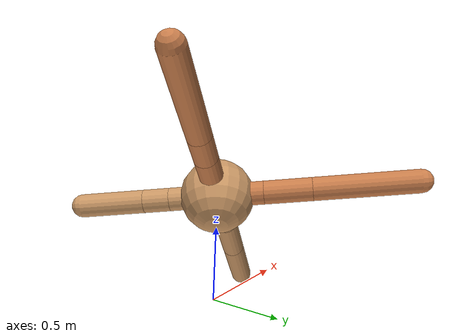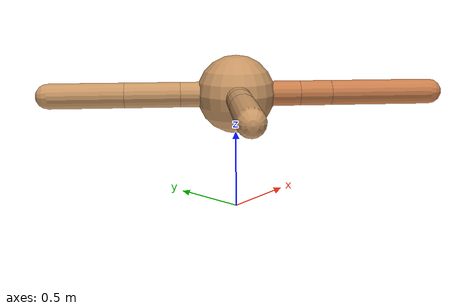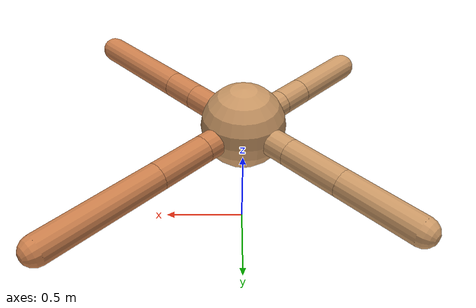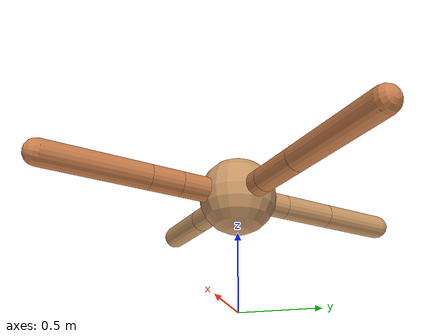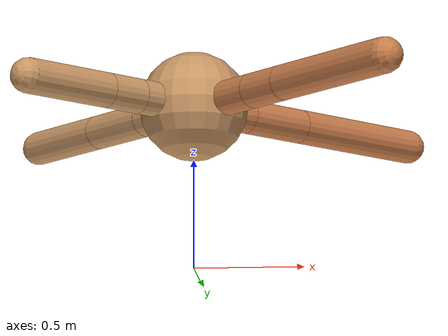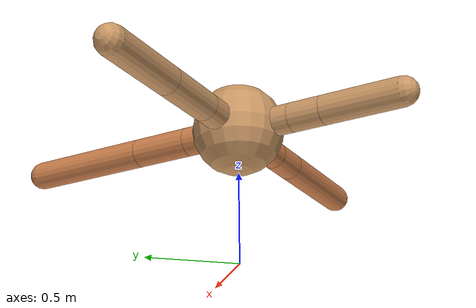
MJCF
<mujoco model="ant">
  <compiler angle="degree" coordinate="local" inertiafromgeom="true" />
  <option integrator="RK4" timestep="0.01" />
  <custom>
    <numeric data="0.0 0.0 0.55 1.0 0.0 0.0 0.0 0.0 1.0 0.0 -1.0 0.0 -1.0 0.0 1.0" name="init_qpos" />
  </custom>
  <default>
    <joint armature="1" damping="1" limited="true" />
    <geom conaffinity="0" condim="3" density="5.0" friction="1.5 0.1 0.1" margin="0.01" rgba="0.8 0.6 0.4 1" />
  </default>
  <worldbody>
    <body name="torso" pos="0 0 0.75">
      <geom name="torso_geom" pos="0 0 0" size="0.25" type="sphere" />

      <body name="front_left_leg" pos="0 0 0">
        <geom fromto="0.0 0.0 0.0 0.22426841131083655 0.22426841131083655 0.0" name="aux_1_geom" size="0.08" type="capsule" rgba=".8 .5 .3 1" />
        <body name="aux_1" pos="0.22426841131083655 0.22426841131083655 0.0">
          <joint axis="0 0 1" name="hip_1" pos="0.0 0.0 0.0" range="-40 40" type="hinge" />
          <geom fromto="0.0 0.0 0.0 0.22819153636105743 0.22819153636105743 0.0" name="left_leg_geom" size="0.08" type="capsule" rgba=".8 .5 .3 1" />
          <body pos="0.22819153636105743 0.22819153636105743 0.0" name="front_left_foot">
            <joint axis="-1 1 0" name="ankle_1" pos="0.0 0.0 0.0" range="30 100" type="hinge" />
            <geom fromto="0.0 0.0 0.0 0.4966480865019115 0.4966480865019115 0.0" name="left_ankle_geom" size="0.08" type="capsule" rgba=".8 .5 .3 1" />
          </body>
        </body>
      </body>
      <body name="front_right_leg" pos="0 0 0">
        <geom fromto="0.0 0.0 0.0 -0.25058328985098033 0.25058328985098033 0.0" name="aux_2_geom" size="0.08" type="capsule" />
        <body name="aux_2" pos="-0.25058328985098033 0.25058328985098033 0.0">
          <joint axis="0 0 1" name="hip_2" pos="0.0 0.0 0.0" range="-40 40" type="hinge" />
          <geom fromto="0.0 0.0 0.0 -0.2479850414805565 0.2479850414805565 0.0" name="right_leg_geom" size="0.08" type="capsule" />
          <body pos="-0.2479850414805565 0.2479850414805565 0.0" name="front_right_foot">
            <joint axis="1 1 0" name="ankle_2" pos="0.0 0.0 0.0" range="-100 -30" type="hinge" />
            <geom fromto="0.0 0.0 0.0 -0.3324011590321567 0.3324011590321567 0.0" name="right_ankle_geom" size="0.08" type="capsule" />
          </body>
        </body>
      </body>
      <body name="left_back_leg" pos="0 0 0">
        <geom fromto="0.0 0.0 0.0 -0.2284982575506283 -0.2284982575506283 0.0" name="aux_3_geom" size="0.08" type="capsule" />
        <body name="aux_3" pos="-0.2284982575506283 -0.2284982575506283 0.0">
          <joint axis="0 0 1" name="hip_3" pos="0.0 0.0 0.0" range="-40 40" type="hinge" />
          <geom fromto="0.0 0.0 0.0 -0.1275753659839128 -0.1275753659839128 0.0" name="back_leg_geom" size="0.08" type="capsule" />
          <body pos="-0.1275753659839128 -0.1275753659839128 0.0" name="left_back_foot">
            <joint axis="-1 1 0" name="ankle_3" pos="0.0 0.0 0.0" range="-100 -30" type="hinge" />
            <geom fromto="0.0 0.0 0.0 -0.309409277877752 -0.309409277877752 0.0" name="third_ankle_geom" size="0.08" type="capsule" />
          </body>
        </body>
      </body>
      <body name="right_back_leg" pos="0 0 0">
        <geom fromto="0.0 0.0 0.0 0.29030622775771286 -0.29030622775771286 0.0" name="aux_4_geom" size="0.08" type="capsule" rgba=".8 .5 .3 1" />
        <body name="aux_4" pos="0.29030622775771286 -0.29030622775771286 0.0">
          <joint axis="0 0 1" name="hip_4" pos="0.0 0.0 0.0" range="-40 40" type="hinge" />
          <geom fromto="0.0 0.0 0.0 0.14412792726407694 -0.14412792726407694 0.0" name="rightback_leg_geom" size="0.08" type="capsule" rgba=".8 .5 .3 1" />
          <body pos="0.14412792726407694 -0.14412792726407694 0.0" name="right_back_foot">
            <joint axis="1 1 0" name="ankle_4" pos="0.0 0.0 0.0" range="30 100" type="hinge" />
            <geom fromto="0.0 0.0 0.0 0.4642683833583295 -0.4642683833583295 0.0" name="fourth_ankle_geom" size="0.08" type="capsule" rgba=".8 .5 .3 1" />
          </body>
        </body>
      </body>
    </body>
  </worldbody>
  <actuator>
    <motor ctrllimited="true" ctrlrange="-1.0 1.0" joint="hip_4" gear="150" />
    <motor ctrllimited="true" ctrlrange="-1.0 1.0" joint="ankle_4" gear="150" />
    <motor ctrllimited="true" ctrlrange="-1.0 1.0" joint="hip_1" gear="150" />
    <motor ctrllimited="true" ctrlrange="-1.0 1.0" joint="ankle_1" gear="150" />
    <motor ctrllimited="true" ctrlrange="-1.0 1.0" joint="hip_2" gear="150" />
    <motor ctrllimited="true" ctrlrange="-1.0 1.0" joint="ankle_2" gear="150" />
    <motor ctrllimited="true" ctrlrange="-1.0 1.0" joint="hip_3" gear="150" />
    <motor ctrllimited="true" ctrlrange="-1.0 1.0" joint="ankle_3" gear="150" />
  </actuator>
</mujoco>
